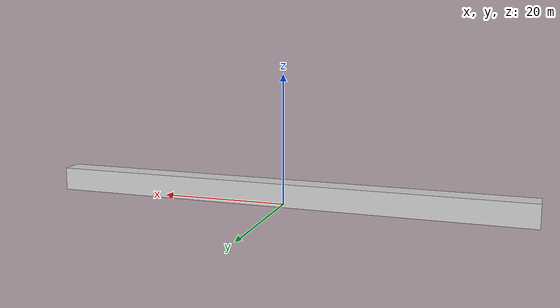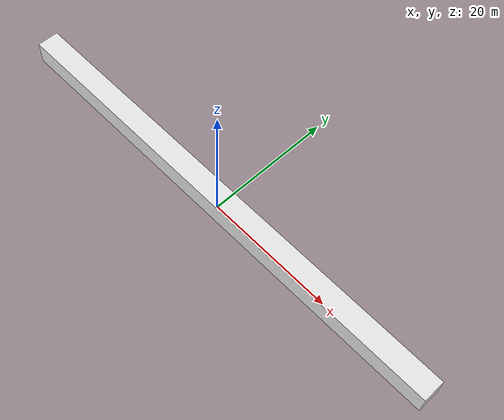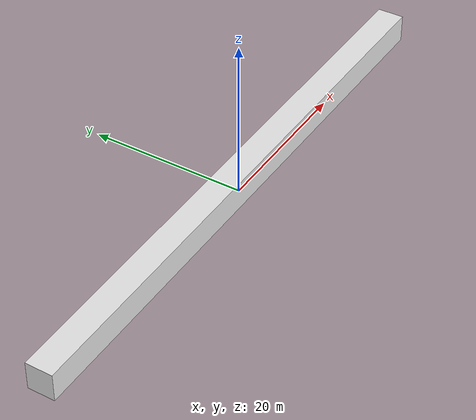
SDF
<?xml version="1.0" ?>
<sdf version="1.9">
  <model name="shinkansen">
    <static>false</static>

    <!-- Vehicle Chassis -->
    <link name="chassis">
      <pose>0 0 0.5 0 0 0</pose>

      <inertial>
        <mass>100000.0</mass>
        <inertia>
          <ixx>10000.0</ixx>
          <ixy>0</ixy>
          <ixz>0</ixz>
          <iyy>50000.0</iyy>
          <iyz>0</iyz>
          <izz>50000.0</izz>
        </inertia>
      </inertial>

      <visual name="visual">
        <pose>0 0 1.3 0 0 0</pose>
        <geometry>
          <box>
            <size>75.0 3.4 3.6</size>
          </box>
        </geometry>
        <material>
          <ambient>0.8 0.8 0.8 1</ambient>
          <diffuse>0.9 0.9 0.9 1</diffuse>
        </material>
      </visual>

      <collision name="collision">
        <pose>0 0 1.3 0 0 0</pose>
        <geometry>
          <box>
            <size>75.0 3.4 3.6</size>
          </box>
        </geometry>
        <surface>
          <friction>
            <ode>
              <mu>0.0</mu>
              <mu2>0.0</mu2>
            </ode>
          </friction>
        </surface>
      </collision>

      <!-- NavSat (GNSS) Sensor -->
      <sensor name="navsat_sensor" type="navsat">
        <pose>0 0 1.0 0 0 0</pose>
        <always_on>true</always_on>
        <update_rate>10</update_rate>
        <navsat>
          <position_sensing>
            <horizontal>
              <noise type="gaussian">
                <mean>0.0</mean>
                <stddev>0.1</stddev>
              </noise>
            </horizontal>
            <vertical>
              <noise type="gaussian">
                <mean>0.0</mean>
                <stddev>0.1</stddev>
              </noise>
            </vertical>
          </position_sensing>
        </navsat>
      </sensor>

      <!-- IMU Sensor -->
      <sensor name="imu_sensor" type="imu">
        <pose>0 0 0.5 0 0 0</pose>
        <always_on>true</always_on>
        <update_rate>100</update_rate>
        <imu>
          <angular_velocity>
            <x>
              <noise type="gaussian">
                <mean>0.0</mean>
                <stddev>0.01</stddev>
              </noise>
            </x>
            <y>
              <noise type="gaussian">
                <mean>0.0</mean>
                <stddev>0.01</stddev>
              </noise>
            </y>
            <z>
              <noise type="gaussian">
                <mean>0.0</mean>
                <stddev>0.01</stddev>
              </noise>
            </z>
          </angular_velocity>
          <linear_acceleration>
            <x>
              <noise type="gaussian">
                <mean>0.0</mean>
                <stddev>0.1</stddev>
              </noise>
            </x>
            <y>
              <noise type="gaussian">
                <mean>0.0</mean>
                <stddev>0.1</stddev>
              </noise>
            </y>
            <z>
              <noise type="gaussian">
                <mean>0.0</mean>
                <stddev>0.1</stddev>
              </noise>
            </z>
          </linear_acceleration>
        </imu>
      </sensor>
    </link>

    <!-- Velocity Control Plugin (Replaces Diff Drive) -->
    <plugin
      filename="gz-sim-velocity-control-system"
      name="gz::sim::systems::VelocityControl">
      <link_name>chassis</link_name>
      <topic>cmd_vel</topic>
    </plugin>

    <!-- Ground Truth Odometry Plugin -->
    <plugin
      filename="gz-sim-odometry-publisher-system"
      name="gz::sim::systems::OdometryPublisher">
      <odom_frame>odom</odom_frame>
      <robot_base_frame>chassis</robot_base_frame>
      <odom_publish_frequency>1000</odom_publish_frequency>
      <odom_topic>odom</odom_topic>
    </plugin>

    <!-- NavSat Plugin -->
    <plugin
      filename="gz-sim-navsat-system"
      name="gz::sim::systems::NavSat">
    </plugin>

    <!-- IMU Plugin -->
    <plugin
      filename="gz-sim-imu-system"
      name="gz::sim::systems::Imu">
    </plugin>

  </model>
</sdf>
